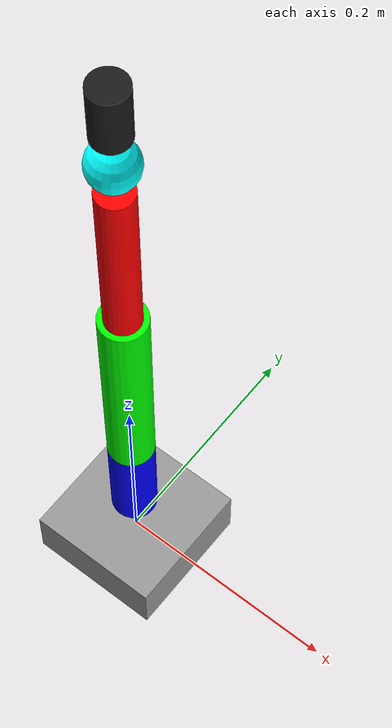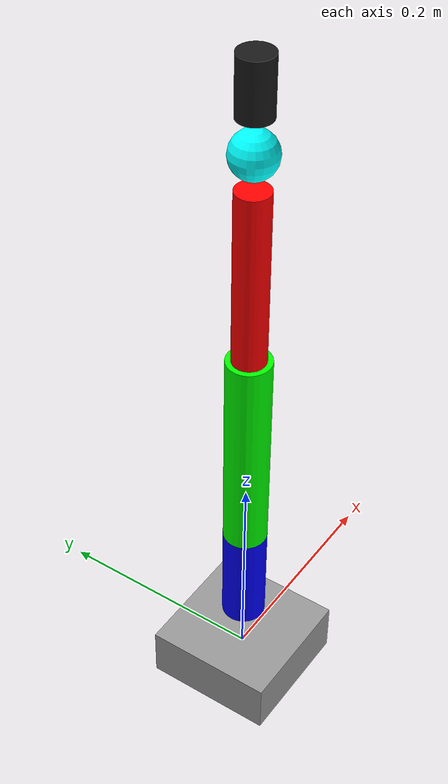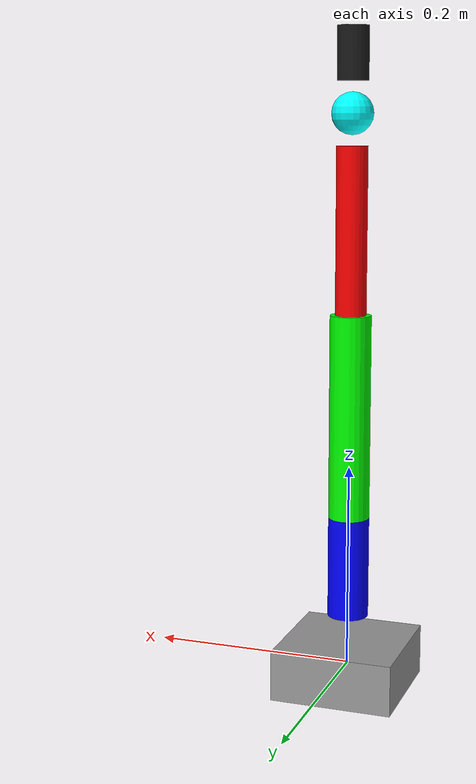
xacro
<?xml version="1.0"?>
<robot name="dobot_magician">

  <!-- ================= BASE ================= -->
  <link name="magician_base_link">
    <visual>
      <geometry>
        <box size="0.12 0.12 0.05"/>
      </geometry>
      <material name="grey">
        <color rgba="0.6 0.6 0.6 1"/>
      </material>
    </visual>
  </link>

  <!-- ================= LINK 1 ================= -->
  <link name="magician_link_1">
    <visual>
      <origin xyz="0 0 0.05" rpy="0 0 0"/>
      <geometry>
        <cylinder radius="0.02" length="0.10"/>
      </geometry>
      <material name="blue">
        <color rgba="0 0 1 1"/>
      </material>
    </visual>
  </link>

  <!-- ================= LINK 2 ================= -->
  <link name="magician_link_2">
    <visual>
      <origin xyz="0 0 0.10" rpy="0 0 0"/>
      <geometry>
        <cylinder radius="0.02" length="0.20"/>
      </geometry>
      <material name="green">
        <color rgba="0 1 0 1"/>
      </material>
    </visual>
  </link>

  <!-- ================= LINK 3 ================= -->
  <link name="magician_link_3">
    <visual>
      <origin xyz="0 0 0.08" rpy="0 0 0"/>
      <geometry>
        <cylinder radius="0.015" length="0.16"/>
      </geometry>
      <material name="red">
        <color rgba="1 0 0 1"/>
      </material>
    </visual>
  </link>

  <!-- ================= LINK 4 (WRIST) ================= -->
  <link name="magician_link_4">
    <visual>
      <origin xyz="0 0 0.03" rpy="0 0 0"/>
      <geometry>
        <sphere radius="0.02"/>
      </geometry>
      <material name="cyan">
        <color rgba="0 1 1 1"/>
      </material>
    </visual>
  </link>

  <!-- ================= TOOL LINK ================= -->
  <link name="tool0">
    <visual>
      <origin xyz="0 0 0.025" rpy="0 0 0"/>
      <geometry>
        <cylinder radius="0.015" length="0.05"/>
      </geometry>
      <material name="black">
        <color rgba="0.1 0.1 0.1 1"/>
      </material>
    </visual>

    <collision>
      <origin xyz="0 0 0.025" rpy="0 0 0"/>
      <geometry>
        <cylinder radius="0.015" length="0.05"/>
      </geometry>
    </collision>
  </link>

  <!-- ================= JOINTS ================= -->

  <joint name="magician_joint_1" type="revolute">
    <parent link="magician_base_link"/>
    <child link="magician_link_1"/>
    <origin xyz="0 0 0.05" rpy="0 0 0"/>
    <axis xyz="0 0 1"/>
    <limit lower="-3.14" upper="3.14" effort="10" velocity="1.0"/>
  </joint>

  <joint name="magician_joint_2" type="revolute">
    <parent link="magician_link_1"/>
    <child link="magician_link_2"/>
    <origin xyz="0 0 0.10" rpy="0 0 0"/>
    <axis xyz="0 1 0"/>
    <limit lower="-1.57" upper="1.57" effort="10" velocity="1.0"/>
  </joint>

  <joint name="magician_joint_3" type="revolute">
    <parent link="magician_link_2"/>
    <child link="magician_link_3"/>
    <origin xyz="0 0 0.20" rpy="0 0 0"/>
    <axis xyz="0 1 0"/>
    <limit lower="-1.57" upper="1.57" effort="10" velocity="1.0"/>
  </joint>

  <joint name="magician_joint_4" type="revolute">
    <parent link="magician_link_3"/>
    <child link="magician_link_4"/>
    <origin xyz="0 0 0.16" rpy="0 0 0"/>
    <axis xyz="0 0 1"/>
    <limit lower="-3.14" upper="3.14" effort="10" velocity="1.0"/>
  </joint>

  <!-- ================= FIXED TOOL JOINT ================= -->
  <joint name="tool0_fixed_joint" type="fixed">
    <parent link="magician_link_4"/>
    <child link="tool0"/>
    <origin xyz="0 0 0.06" rpy="0 0 0"/>
  </joint>

  <!-- ================= ros2_control ================= -->

  <ros2_control name="DobotSystem" type="system">
    <hardware>
      <plugin>dobot_hardware/DobotHardware</plugin>
    </hardware>

    <joint name="magician_joint_1">
      <command_interface name="position"/>
      <state_interface name="position"/>
    </joint>

    <joint name="magician_joint_2">
      <command_interface name="position"/>
      <state_interface name="position"/>
    </joint>

    <joint name="magician_joint_3">
      <command_interface name="position"/>
      <state_interface name="position"/>
    </joint>

    <joint name="magician_joint_4">
      <command_interface name="position"/>
      <state_interface name="position"/>
    </joint>
  </ros2_control>

</robot>
